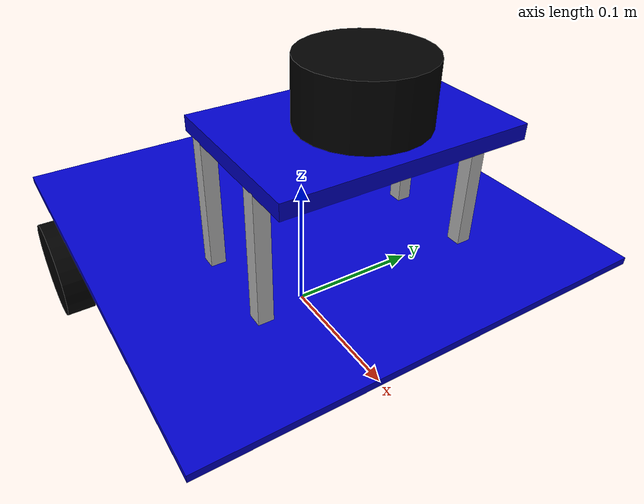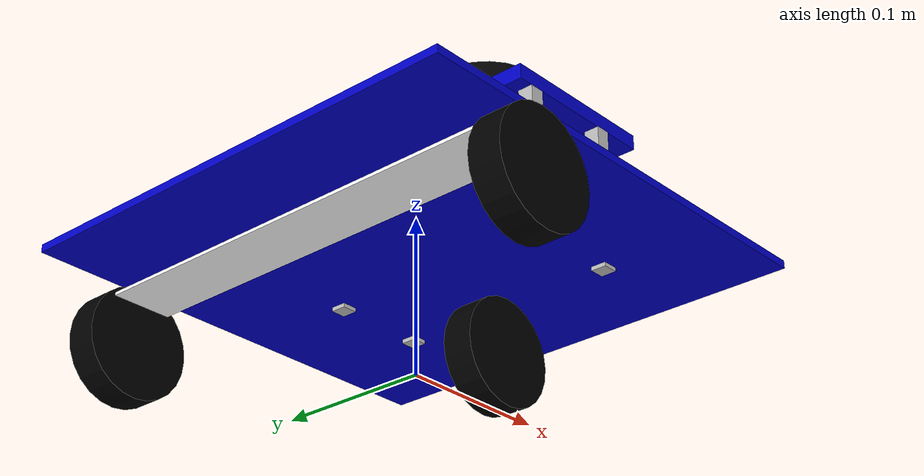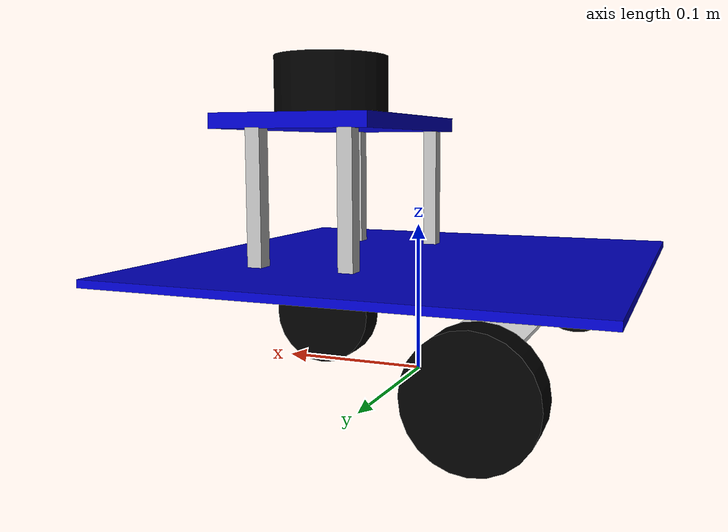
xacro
<?xml version="1.0"?>
<robot name="linorobot" xmlns:xacro="http://www.ros.org/wiki/xacro">

  <!-- Define materials -->
  <xacro:property name="blue" value="0 0 .8 1"/>
  <xacro:property name="black" value="0 0 0 1"/>
  <xacro:property name="white" value="1 1 1 1"/>
  <xacro:property name="silver" value="0.75 0.75 0.75 1"/>

  <!-- Define common geometry -->
  <xacro:property name="wheel_radius" value="0.035"/>
  <xacro:property name="wheel_length" value="0.02"/>
  <xacro:property name="caster_radius" value="0.035"/>
  <xacro:property name="caster_length" value="0.02"/>
  <xacro:property name="pole_size" value="0.01 0.01 0.095"/>
  <xacro:property name="track_size" value="0.04 0.3 0.002"/>
  <xacro:property name="laser_link_radius" value="0.04"/>
  <xacro:property name="laser_link_length" value="0.04"/>

  <!-- Define links -->
  <link name="base_link">
    <visual>
      <geometry>
        <box size="0.305 0.305 0.005 "/>
      </geometry>
      <origin rpy="0 0 0" xyz="0.0 0.00 0.075"/>
      <material name="blue">
        <color rgba="${blue}"/>
      </material>
    </visual>
  </link>

  <link name="perception_deck">
    <visual>
      <geometry>
        <box size="0.11 0.16 0.01"/>
      </geometry>
      <origin rpy="0 0 0" xyz="0.057 0 0.1695"/>
      <material name="blue">
        <color rgba="${blue}"/>
      </material>
    </visual>
  </link>

  <link name="wheel_left">
    <visual>
      <geometry>
        <cylinder length="${wheel_length}" radius="${wheel_radius}"/>
      </geometry>
      <origin rpy="1.57 0 0" xyz="-0.085 0.1525 ${wheel_radius}"/>
      <material name="black">
        <color rgba="${black}"/>
      </material>
    </visual>
  </link>

  <link name="wheel_right">
    <visual>
      <geometry>
        <cylinder length="${wheel_length}" radius="${wheel_radius}"/>
      </geometry>
      <origin rpy="1.57 0 0" xyz="-0.085 -0.1525 ${wheel_radius}"/>
      <material name="black">
        <color rgba="${black}"/>
      </material>
    </visual>
  </link>

  <link name="caster_wheel">
    <visual>
      <geometry>
        <cylinder length="${caster_length}" radius="${caster_radius}"/>
      </geometry>
      <origin rpy="1.57 0 0" xyz="0.07 0.00 ${caster_radius}"/>
      <material name="black">
        <color rgba="${black}"/>
      </material>
    </visual>
  </link>

  <link name="wheel_track">
    <visual>
      <geometry>
        <box size="${track_size}"/>
      </geometry>
      <origin rpy="0 0 0" xyz="-0.085 0.0 0.06"/>
      <material name="white">
        <color rgba="${white}"/>
      </material>
    </visual>
  </link>

  <link name="laser_link">
    <visual>
      <geometry>
        <cylinder length="${laser_link_length}" radius="${laser_link_radius}"/>
      </geometry>
      <material name="black"/>
    </visual>
  </link>

  <link name="left_pole_one">
    <visual>
      <geometry>
        <box size="${pole_size}"/>
      </geometry>
      <origin rpy="0 0 0" xyz="0.017 0.075 0.1175"/>
      <material name="silver">
        <color rgba="${silver}"/>
      </material>
    </visual>
  </link>

  <link name="left_pole_two">
    <visual>
      <geometry>
        <box size="${pole_size}"/>
      </geometry>
      <origin rpy="0 0 0" xyz="0.08 0.075 0.1175"/>
      <material name="silver">
        <color rgba="${silver}"/>
      </material>
    </visual>
  </link>

  <link name="right_pole_one">
    <visual>
      <geometry>
        <box size="${pole_size}"/>
      </geometry>
      <origin rpy="0 0 0" xyz="0.017 -0.075 0.1175"/>
      <material name="silver">
        <color rgba="${silver}"/>
      </material>
    </visual>
  </link>

  <link name="right_pole_two">
    <visual>
      <geometry>
        <box size="${pole_size}"/>
      </geometry>
      <origin rpy="0 0 0" xyz="0.08 -0.075 0.1175"/>
      <material name="silver">
        <color rgba="${silver}"/>
      </material>
    </visual>
  </link>

  <!-- Define joints -->
  <joint name="base_to_wheel_left" type="fixed">
    <parent link="base_link"/>
    <child link="wheel_left"/>
    <origin xyz="0 0 0"/>
  </joint>

  <joint name="base_to_wheel_right" type="fixed">
    <parent link="base_link"/>
    <child link="wheel_right"/>
    <origin xyz="0 0 0"/>
  </joint>

  <joint name="base_to_wheel_track" type="fixed">
    <parent link="base_link"/>
    <child link="wheel_track"/>
    <origin xyz="0 0 0"/>
  </joint>

  <joint name="base_to_caster_wheel" type="fixed">
    <parent link="base_link"/>
    <child link="caster_wheel"/>
    <origin xyz="0 0 0"/>
  </joint>

  <joint name="base_to_laser_link" type="fixed">
    <parent link="base_link"/>
    <child link="laser_link"/>
    <origin xyz="0.065 0.0 0.1960"/>
  </joint>

  <joint name="base_to_left_pole_one" type="fixed">
    <parent link="base_link"/>
    <child link="left_pole_one"/>
    <origin xyz="0 0 0"/>
  </joint>

  <joint name="base_to_left_pole_two" type="fixed">
    <parent link="base_link"/>
    <child link="left_pole_two"/>
    <origin xyz="0 0 0"/>
  </joint>

  <joint name="base_to_right_pole_one" type="fixed">
    <parent link="base_link"/>
    <child link="right_pole_one"/>
    <origin xyz="0 0 0"/>
  </joint>

  <joint name="base_to_right_pole_two" type="fixed">
    <parent link="base_link"/>
    <child link="right_pole_two"/>
    <origin xyz="0 0 0"/>
  </joint>

  <joint name="base_to_perception_deck" type="fixed">
    <parent link="base_link"/>
    <child link="perception_deck"/>
    <origin xyz="0 0 0"/>
  </joint>

</robot>
